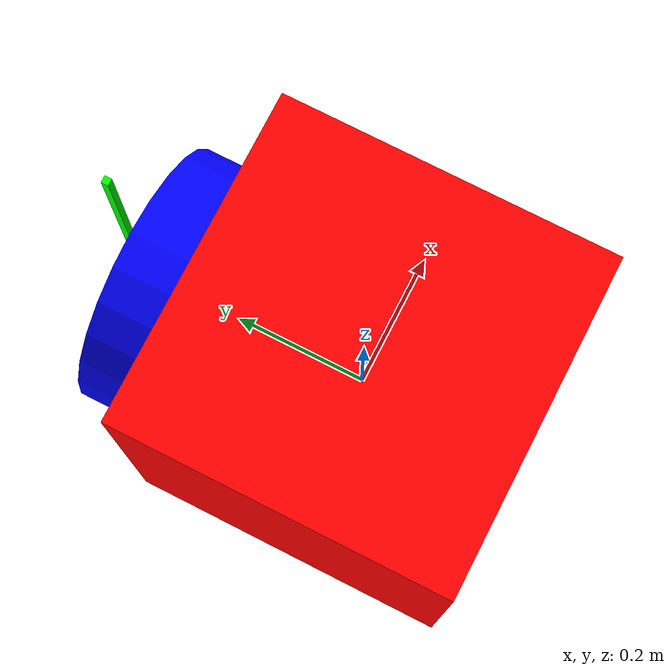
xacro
<?xml version="1.0"?>
<robot xmlns:xacro="http://www.ros.org/wiki/xacro" name="test_single_motor">

  <link name="box">
        <visual>
            <origin xyz="0.0 0.0 0.0" rpy="0.0 0.0 0.0"/>
            <geometry>
                <box size="0.5 0.5 0.5"/>
            </geometry>
            <material name="red">
                <color rgba="1.0 0.0 0.0 1.0"/>
            </material>
        </visual>
    </link>

    <link name="rotor">
        <visual>
            <origin xyz="0.0 0.0 0.0" rpy="0.0 0.0 0.0"/>
            <geometry>
                <cylinder radius="0.2" length="0.1"/>
            </geometry>
            <material name="red">
                <color rgba="0.0 0.0 1.0 1.0"/>
            </material>
        </visual>
    </link>

    <link name="indicator">
        <visual>
            <origin xyz="0.0 0.0 0.0" rpy="0.0 0.0 0.0"/>
            <geometry>
                <box size="0.01 0.3 0.01"/>
            </geometry>
            <material name="">
                <color rgba="0.0 1.0 0.0 1.0"/>
                <texture filename=""/>
            </material>
        </visual>
    </link>

    <joint name="joint_1" type="revolute">
        <origin xyz="0.0 0.3 0.0" rpy="-1.5707 0.0 0.0"/>
        <parent link="box"/>
        <child link="rotor"/>
        <axis xyz="0.0 0.0 -1.0"/>
        <limit lower="-10.0" upper="10.0" effort="10.0" velocity="100.0"/>
    </joint>

    <joint name="joint_2" type="fixed">
        <origin xyz="0.0 -0.25 0.055" rpy="0.0 0.0 0.0"/>
        <parent link="rotor"/>
        <child link="indicator"/>
    </joint>

  <ros2_control name="pi3hat_hardware_interface" type="system">
        <hardware>
            <plugin>pi3hat_hardware_interface/Pi3HatHardwareInterface</plugin>
            <param name="imu_mounting_deg.yaw">0</param>
            <param name="imu_mounting_deg.pitch">0</param>
            <param name="imu_mounting_deg.roll">0</param>
            <param name="imu_sampling_rate">1000</param>

            <param name="can_1_fdcan_frame">true</param>
            <param name="can_1_automatic_retransmission">true</param>
            <param name="can_1_bitrate_switch">true</param>

            <param name="can_2_fdcan_frame">true</param>
            <param name="can_2_automatic_retransmission">true</param>
            <param name="can_2_bitrate_switch">true</param>

            <param name="can_3_fdcan_frame">true</param>
            <param name="can_3_automatic_retransmission">true</param>
            <param name="can_3_bitrate_switch">true</param>

            <param name="can_4_fdcan_frame">true</param>
            <param name="can_4_automatic_retransmission">true</param>
            <param name="can_4_bitrate_switch">true</param>

            <param name="can_5_fdcan_frame">true</param>
            <param name="can_5_automatic_retransmission">true</param>
            <param name="can_5_bitrate_switch">true</param>

        </hardware>

        <joint name="joint_1">
            <param name="controller_type">moteus</param>
            <param name="controller_can_bus">1</param>
            <param name="controller_can_id">1</param>

            <param name="motor_direction">1</param>
            <param name="motor_position_offset">0.0</param>
            <param name="motor_position_max">500.0</param>
            <param name="motor_position_min">-500.0</param>
            <param name="motor_velocity_max">10.0</param>
            <param name="motor_torque_max">0.2</param>

            <command_interface name="position"/>
            <command_interface name="velocity"/>
            <command_interface name="effort"/>

            <state_interface name="position"/>
            <state_interface name="velocity"/>
            <state_interface name="effort"/>
            <state_interface name="temperature"/>
      </joint>

    <transmission name="transmission1">
        <plugin>transmission_interface/SimpleTransmission</plugin>
        <actuator name="actuator_1" role="actuator1"/>
        <joint name="joint_1" role="joint1">
            <mechanical_reduction>16.0</mechanical_reduction>
            <offset>0.0</offset>
        </joint>
    </transmission>

      <sensor name="imu_sensor">
          <state_interface name="orientation.x"/>
          <state_interface name="orientation.y"/>
          <state_interface name="orientation.z"/>
          <state_interface name="orientation.w"/>
          <state_interface name="angular_velocity.x"/>
          <state_interface name="angular_velocity.y"/>
          <state_interface name="angular_velocity.z"/>
          <state_interface name="linear_acceleration.x"/>
          <state_interface name="linear_acceleration.y"/>
          <state_interface name="linear_acceleration.z"/>
      </sensor>
  </ros2_control>

</robot>
